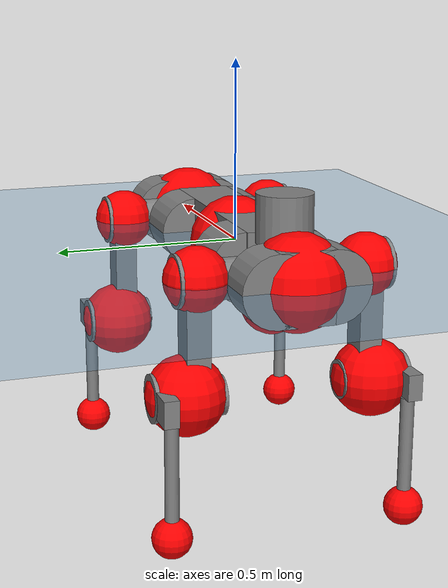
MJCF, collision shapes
<mujoco model="anymal_c">
  <compiler angle="radian" assetdir="assets" balanceinertia="true" inertiafromgeom="false"/>

  <option timestep="0.005" density="1.2" viscosity="2e-05"/>

  <size nkey="1"/>

  <visual>
    <quality shadowsize="8192"/>
    <map shadowclip="0.5"/>
  </visual>

  <default>
    <default class="/">
      <material specular="0" shininess="0.25"/>
      <geom contype="0" conaffinity="0" group="1" solref="-1000 -80"/>
      <site size="0.01 0.005 0.005" group="5"/>
      <general forcelimited="true" forcerange="-80 80" biastype="affine" gainprm="80" biasprm="0 -80 -2"/>
      <default class="anymal_c">
        <joint armature="0.01" damping="0.01" frictionloss="0.1"/>
        <default class="visual">
          <geom type="mesh" group="2"/>
          <default class="visual_zflip"/>
        </default>
        <default class="collision">
          <geom type="cylinder" group="3"/>
          <default class="foot">
            <geom size="0.03 0 0" type="sphere" condim="6" priority="1" friction="0.8 0.02 0.01" solimp="0.015 1 0.03"/>
          </default>
        </default>
      </default>
      <default class="reward_collision_sphere">
        <geom group="5" rgba="1 0 0 1"/>
      </default>
    </default>
  </default>

  <asset>
    <texture type="skybox" colorspace="auto" name="//unnamed_texture_0" builtin="gradient" rgb1="0.95 0.95 0.95" rgb2="0.95 0.95 0.95" width="100" height="600"/>
    <texture type="2d" colorspace="auto" name="texplane" builtin="checker" rgb1="0.345 0.575 0.748" rgb2="0.345 0.575 0.748" markrgb="1 1 1" width="512" height="512"/>
    <texture type="2d" colorspace="linear" name="base" file="base.png"/>
    <texture type="2d" colorspace="linear" name="top_shell" file="top_shell.png"/>
    <texture type="2d" colorspace="linear" name="bottom_shell" file="bottom_shell.png"/>
    <texture type="2d" colorspace="linear" name="remote" file="remote.png"/>
    <texture type="2d" colorspace="linear" name="hatch" file="hatch.png"/>
    <texture type="2d" colorspace="linear" name="handle" file="handle.png"/>
    <texture type="2d" colorspace="linear" name="face" file="face.png"/>
    <texture type="2d" colorspace="linear" name="battery" file="battery.png"/>
    <texture type="2d" colorspace="linear" name="lidar_cage" file="lidar_cage.png"/>
    <texture type="2d" colorspace="linear" name="depth_camera" file="depth_camera.png"/>
    <texture type="2d" colorspace="linear" name="wide_angle_camera" file="wide_angle_camera.png"/>
    <texture type="2d" colorspace="linear" name="lidar" file="lidar.png"/>
    <texture type="2d" colorspace="linear" name="drive" file="drive.png"/>
    <texture type="2d" colorspace="linear" name="hip_l" file="hip_l.png"/>
    <texture type="2d" colorspace="linear" name="shank_l" file="shank_l.png"/>
    <texture type="2d" colorspace="linear" name="foot" file="foot.png"/>
    <texture type="2d" colorspace="linear" name="thigh" file="thigh.png"/>
    <texture type="2d" colorspace="linear" name="shank_r" file="shank_r.png"/>
    <texture type="2d" colorspace="linear" name="hip_r" file="hip_r.png"/>
    <material name="MatPlane" class="/" texture="texplane" texuniform="true" texrepeat="2 2" specular="0.9" shininess="0.5"/>
    <material name="black_plastic" class="/" rgba="0.007 0.007 0.007 1"/>
    <material name="green" class="/" rgba="0.052 0.178 0.033 1"/>
    <material name="red" class="/" rgba="0.178 0.006 0.005 1"/>
    <material name="yellow" class="/" rgba="0.178 0.119 0.006 1"/>
    <material name="lwl" class="/" rgba="0.8 0.8 0.8 1"/>
    <material name="base" class="/" texture="base"/>
    <material name="top_shell" class="/" texture="top_shell"/>
    <material name="bottom_shell" class="/" texture="bottom_shell"/>
    <material name="hip_l" class="/" texture="hip_l"/>
    <material name="thigh" class="/" texture="thigh"/>
    <material name="shank_l" class="/" texture="shank_l"/>
    <material name="foot" class="/" texture="foot"/>
    <material name="hip_r" class="/" texture="hip_r"/>
    <material name="shank" class="/" texture="shank_r"/>
    <material name="hatch" class="/" texture="hatch"/>
    <material name="remote" class="/" texture="remote"/>
    <material name="handle" class="/" texture="handle"/>
    <material name="face" class="/" texture="face"/>
    <material name="depth_camera" class="/" texture="depth_camera"/>
    <material name="wide_angle_camera" class="/" texture="wide_angle_camera"/>
    <material name="battery" class="/" texture="battery"/>
    <material name="lidar_cage" class="/" texture="lidar_cage"/>
    <material name="lidar" class="/" texture="lidar"/>
    <material name="drive" class="/" texture="drive"/>
    <mesh name="base_0" class="/" file="base_0.obj"/>
    <mesh name="base_1" class="/" file="base_1.obj"/>
    <mesh name="base_2" class="/" file="base_2.obj"/>
    <mesh name="base_3" class="/" file="base_3.obj"/>
    <mesh name="base_4" class="/" file="base_4.obj"/>
    <mesh name="base_5" class="/" file="base_5.obj"/>
    <mesh name="top_shell" class="/" file="top_shell.obj"/>
    <mesh name="bottom_shell" class="/" file="bottom_shell.obj"/>
    <mesh name="remote" class="/" file="remote.obj"/>
    <mesh name="handle" class="/" file="handle.obj"/>
    <mesh name="face" class="/" file="face.obj"/>
    <mesh name="wide_angle_camera" class="/" file="wide_angle_camera.obj"/>
    <mesh name="depth_camera" class="/" file="depth_camera.obj"/>
    <mesh name="battery" class="/" file="battery.obj"/>
    <mesh name="lidar_cage" class="/" file="lidar_cage.obj"/>
    <mesh name="lidar" class="/" file="lidar.obj"/>
    <mesh name="drive" class="/" file="drive.obj"/>
    <mesh name="hip_l" class="/" file="hip_l.obj"/>
    <mesh name="thigh" class="/" file="thigh.obj"/>
    <mesh name="shank_l" class="/" file="shank_l.obj"/>
    <mesh name="foot" class="/" file="foot.obj"/>
    <mesh name="hip_r" class="/" file="hip_r.obj"/>
    <mesh name="hatch" class="/" file="hatch.obj"/>
    <mesh name="shank_r" class="/" file="shank_r.obj"/>
  </asset>

  <worldbody>
    <geom name="floor" class="/" size="100 100 0.125" type="plane" group="0" material="MatPlane"/>
    <light name="toplight_shadow" class="/" pos="0 0 5" dir="0.0990148 0.0990148 -0.990148" type="directional" ambient="0.04 0.04 0.04" diffuse="0.55 0.55 0.55" specular="0.12 0.12 0.12"/>
    <light name="toplight_fill" class="/" pos="0 0 5" dir="0.0990148 0.0990148 -0.990148" type="directional" castshadow="false" ambient="0.04 0.04 0.04" diffuse="0.3 0.3 0.3" specular="0.08 0.08 0.08"/>
    <body name="trunk" childclass="anymal_c" pos="-0.0051376 0.000731636 -0.0018457" quat="1 0.000670766 -6.31116e-05 -0.00070335">
      <inertial pos="0.00265994 -0.00303429 0.0535841" quat="0.497855 0.501755 0.501637 0.49874" mass="23.0082" diaginertia="0.632382 0.776135 0.315269"/>
      <joint name="//unnamed_joint_0" type="free" armature="0" damping="0" frictionloss="0"/>
      <geom name="//unnamed_geom_1" class="visual" material="green" mesh="base_0"/>
      <geom name="//unnamed_geom_2" class="visual" material="yellow" mesh="base_1"/>
      <geom name="//unnamed_geom_3" class="visual" material="red" mesh="base_2"/>
      <geom name="//unnamed_geom_4" class="visual" material="black_plastic" mesh="base_3"/>
      <geom name="//unnamed_geom_5" class="visual" material="lwl" mesh="base_4"/>
      <geom name="//unnamed_geom_6" class="visual" material="base" mesh="base_5"/>
      <geom name="trunk_1" class="collision" size="0.305752 0.0738023 0.0948886" type="box"/>
      <geom name="trunk_2" class="collision" size="0.0948886 0.0764381" pos="0.222317 0.0742366 0" quat="0.707107 0 0.707107 0"/>
      <geom name="trunk_3" class="collision" size="0.0948886 0.0764381" pos="-0.222317 0.0742366 0" quat="0.707107 0 0.707107 0"/>
      <geom name="trunk_4" class="collision" size="0.0948886 0.0764381" pos="0.222317 -0.0742366 0" quat="0.707107 0 0.707107 0"/>
      <geom name="trunk_5" class="collision" size="0.0948886 0.0764381" pos="-0.222317 -0.0742366 0" quat="0.707107 0 0.707107 0"/>
      <geom name="//unnamed_geom_12" class="visual" material="top_shell" mesh="top_shell"/>
      <geom name="//unnamed_geom_13" class="visual" material="bottom_shell" mesh="bottom_shell"/>
      <geom name="//unnamed_geom_14" class="visual" material="remote" mesh="remote"/>
      <geom name="//unnamed_geom_15" class="visual" material="handle" mesh="handle"/>
      <geom name="//unnamed_geom_16" class="visual" pos="0.42368 0 0" quat="1 0 0 0" material="face" mesh="face"/>
      <geom name="trunk_6" class="collision" size="0.0579875 0.0738023 0.0948886" pos="0.479899 0 0" type="box"/>
      <geom name="//unnamed_geom_18" class="collision" size="0.0948886 0.0579875" pos="0.479899 0.0742366 0" quat="0.707107 0 0.707107 0"/>
      <geom name="//unnamed_geom_19" class="collision" size="0.0948886 0.0579875" pos="0.479899 -0.0742366 0" quat="0.707107 0 0.707107 0"/>
      <geom name="//unnamed_geom_20" class="visual" pos="0.471877 0 -0.0319861" quat="0.965926 0 0.258819 0" material="depth_camera" mesh="depth_camera"/>
      <geom name="//unnamed_geom_21" class="visual" pos="0.524362 0 0.0161718" material="wide_angle_camera" mesh="wide_angle_camera"/>
      <geom name="//unnamed_geom_22" class="visual_zflip" pos="-0.42368 0 0" quat="0 0 0 1" material="face" mesh="face"/>
      <geom name="trunk_7" class="collision" size="0.0579875 0.0738023 0.0948886" pos="-0.479899 0 0" quat="0 0 0 1" type="box"/>
      <geom name="//unnamed_geom_24" class="collision" size="0.0948886 0.0579875" pos="-0.479899 -0.0742366 0" quat="0 -0.707107 0 0.707107"/>
      <geom name="//unnamed_geom_25" class="collision" size="0.0948886 0.0579875" pos="-0.479899 0.0742366 0" quat="0 -0.707107 0 0.707107"/>
      <geom name="//unnamed_geom_26" class="visual" pos="-0.471877 0 -0.0319861" quat="0 -0.258819 0 0.965926" material="depth_camera" mesh="depth_camera"/>
      <geom name="//unnamed_geom_27" class="visual_zflip" pos="-0.524362 0 0.0161718" quat="0 0 0 1" material="wide_angle_camera" mesh="wide_angle_camera"/>
      <geom name="//unnamed_geom_28" class="visual" material="battery" mesh="battery"/>
      <geom name="//unnamed_geom_29" class="visual" pos="0 0.0815936 0.0309404" quat="0.683013 -0.183013 0.183013 0.683013" material="depth_camera" mesh="depth_camera"/>
      <geom name="//unnamed_geom_30" class="visual" pos="0 -0.0815936 0.0309404" quat="0.683013 0.183013 0.183013 -0.683013" material="depth_camera" mesh="depth_camera"/>
      <geom name="//unnamed_geom_31" class="visual" pos="-0.372062 0 0.0794008" quat="1 0 0 0" material="lidar_cage" mesh="lidar_cage"/>
      <geom name="trunk_8" class="collision" size="0.0738023 0.0632591" pos="-0.372062 0 0.144218"/>
      <geom name="//unnamed_geom_33" class="visual" pos="-0.372062 1.50765e-05 0.153616" quat="0.707107 0 0 -0.707107" material="lidar" mesh="lidar"/>
      <geom name="//unnamed_geom_34" class="visual" pos="0.306542 0.110301 -3.40854e-10" quat="0.258819 0.965926 0 0" material="drive" mesh="drive"/>
      <geom name="//unnamed_geom_35" class="visual" pos="0.306542 -0.110301 3.40854e-10" quat="0.258819 -0.965926 0 0" material="drive" mesh="drive"/>
      <geom name="//unnamed_geom_36" class="visual" pos="-0.306542 0.110301 3.40854e-10" quat="0 0 0.965926 -0.258819" material="drive" mesh="drive"/>
      <geom name="//unnamed_geom_37" class="visual" pos="-0.306542 -0.110301 -3.40854e-10" quat="0 0 -0.965926 -0.258819" material="drive" mesh="drive"/>
      <geom name="//unnamed_geom_38" class="visual" pos="0.118569 0 0.0788606" quat="1 0 0 0" material="hatch" mesh="hatch"/>
      <geom name="//unnamed_geom_39" class="reward_collision_sphere" size="0.126518"/>
      <geom name="//unnamed_geom_40" class="reward_collision_sphere" size="0.126518" pos="0.459967 0 0"/>
      <geom name="//unnamed_geom_41" class="reward_collision_sphere" size="0.126518" pos="-0.459967 0 0"/>
      <site name="imu" pos="0.262977 -0.00241088 0.0828764" size="0.0105432"/>
      <camera name="track" pos="0 -2.12105 0" quat="0.707107 0.707107 0 0" mode="trackcom"/>
      <camera name="ego_camera" pos="0.459967 0 -0.0432113" quat="-0.5 -0.5 0.5 0.5"/>
      <body name="LF_HIP" pos="0.309837 0.111891 0.000673545" quat="0.258006 0.966141 -0.00152796 0.0013351">
        <inertial pos="0.0639457 -0.0167027 -0.00871577" quat="-0.127101 0.708932 -0.134066 0.680652" mass="3.12449" diaginertia="0.00626303 0.00671893 0.00463471"/>
        <joint name="LF_HAA" pos="0 0 0" axis="0.999226 0.0368163 -0.0138379" stiffness="0.0256099" range="-0.759173 0.486518" armature="0.0138907" damping="0.0225773" frictionloss="0.1042"/>
        <geom name="//unnamed_geom_42" class="visual" pos="0 -2.00509e-05 3.29334e-06" quat="0.258819 -0.965926 0 0" material="hip_l" mesh="hip_l"/>
        <geom name="//unnamed_geom_43" class="visual" pos="0.0612267 -0.0747014 -0.043275" quat="0.183013 -0.683013 0.683013 0.183013" material="drive" mesh="drive"/>
        <geom name="//unnamed_geom_44" class="collision" size="0.0527159 0.0738023" pos="0.0612267 -0.0126836 -0.00745935" quat="-0.353553 -0.612372 0.612372 -0.353553"/>
        <body name="LF_THIGH" pos="0.0630436 -0.0781904 -0.0438227" quat="0.183056 -0.683002 0.682998 0.183063">
          <inertial pos="0.0304056 0.000153476 -0.258338" quat="0.99315 -0.00524701 -0.0808399 0.084207" mass="3.60954" diaginertia="0.0336357 0.039406 0.00599499"/>
          <joint name="LF_HFE" pos="0 0 0" axis="0.999999 -0.00149176 -0.000803424" stiffness="0.00808233" range="-3.13377 3.13176" armature="0.00817971" damping="0.0128973" frictionloss="0.111309"/>
          <geom name="//unnamed_geom_45" class="visual" pos="-0.000763511 -1.20311e-06 0" quat="0.707107 0 0 -0.707107" material="thigh" mesh="thigh"/>
          <geom name="//unnamed_geom_46" class="collision" size="0.0685307 0.0421727" pos="0.0408859 0 0" quat="0.5 0.5 -0.5 -0.5"/>
          <geom name="//unnamed_geom_47" class="collision" size="0.0395369 0.0316295 0.14899" pos="0.0306644 0 -0.152659" quat="0.707107 0 0 -0.707107" type="box"/>
          <geom name="//unnamed_geom_48" class="visual" pos="0.102521 0 -0.307881" quat="1 0 0 0" material="drive" mesh="drive"/>
          <geom name="//unnamed_geom_49" class="collision" size="0.0527159 0.0738023" pos="0.0309711 0 -0.307881" quat="0.707107 0 0.707107 0"/>
          <geom name="//unnamed_geom_50" class="reward_collision_sphere" size="0.0843455" pos="0.0255537 0 0"/>
          <body name="LF_SHANK" pos="0.104221 0.00733215 -0.310056" quat="0.999999 -0.000206146 0.000899157 -0.000994393">
            <inertial pos="0.00547474 -0.0669159 -0.0865107" quat="0.990967 -0.133339 -0.0135163 -0.0047198" mass="0.665139" diaginertia="0.0115856 0.0121012 0.00170491"/>
            <joint name="LF_KFE" pos="0 0 0" axis="0.999972 0.00573886 -0.00484519" range="-3.14162 3.09322" armature="0.0103108" damping="0.0211032" frictionloss="0.116324"/>
            <geom name="//unnamed_geom_51" class="visual" pos="-0.000248964 -0.00132749 0" quat="0.707107 0 0 -0.707107" material="shank_l" mesh="shank_l"/>
            <geom name="LF_kfe_act" class="collision" size="0.0632591 0.0210864" pos="0.020443 0 0" quat="0.5 0.5 -0.5 -0.5"/>
            <geom name="//unnamed_geom_53" class="collision" size="0.0606222 0.0355832 0.020032" pos="0.020443 -0.060979 0" quat="0.5 0.5 -0.5 -0.5" type="box"/>
            <geom name="//unnamed_geom_54" class="visual" pos="0.0133391 -0.0937008 -0.365103" quat="0.382683 0 0 -0.92388" material="foot" mesh="foot"/>
            <geom name="LF_calf" class="collision" size="0.0184506 0.148925" pos="0.013339 -0.093273 -0.182552" quat="0.707107 0 0 -0.707107"/>
            <geom name="LF_foot" class="foot" size="0.0290911" pos="0.013339 -0.093273 -0.340797" quat="0.707107 0 0 -0.707107"/>
            <geom name="//unnamed_geom_57" class="reward_collision_sphere" size="0.105432" pos="-0.0511074 0 0"/>
            <geom name="//unnamed_geom_58" class="reward_collision_sphere" size="0.0527159" pos="0.013339 -0.093273 -0.340797"/>
            <site name="LF_foot" class="foot" pos="0.013339 -0.093273 -0.340797" quat="0.707107 0 0 -0.707107" size="0.0105432"/>
          </body>
        </body>
      </body>
      <body name="RF_HIP" pos="0.313735 -0.117326 0.00389922" quat="0.259222 -0.965817 0.000482256 -0.00133119">
        <inertial pos="0.0511961 0.0182566 -0.00331079" quat="0.136072 0.674852 0.133637 0.712882" mass="3.08627" diaginertia="0.0058966 0.00623391 0.00446013"/>
        <joint name="RF_HAA" pos="0 0 0" axis="0.999704 0.0242483 -0.00202021" range="-0.373378 0.766915" armature="0.0103046" damping="0.0217" frictionloss="0.127798"/>
        <geom name="//unnamed_geom_59" class="visual" pos="0 2.00507e-05 3.29333e-06" quat="0.258819 0.965926 0 0" material="hip_r" mesh="hip_r"/>
        <geom name="//unnamed_geom_60" class="visual" pos="0.0612267 0.0747014 -0.043275" quat="0.183013 0.683013 0.683013 -0.183013" material="drive" mesh="drive"/>
        <geom name="//unnamed_geom_61" class="collision" size="0.0527159 0.0738023" pos="0.0612267 0.0126836 -0.00745935" quat="-0.353553 0.612372 0.612372 0.353553"/>
        <body name="RF_THIGH" pos="0.0620657 0.0761127 -0.0466496" quat="0.182856 0.68346 0.68261 -0.183002">
          <inertial pos="0.0319982 -0.00791004 -0.263629" quat="0.992767 -0.00718201 -0.0825584 0.086869" mass="3.66167" diaginertia="0.0334506 0.0418882 0.00622746"/>
          <joint name="RF_HFE" pos="0 0 0" axis="0.999953 -0.00826066 -0.00511144" stiffness="0.00194007" range="-3.18834 3.13277" armature="0.0095812" damping="0.0238121" frictionloss="0.116928"/>
          <geom name="//unnamed_geom_62" class="visual" pos="-0.000763511 -1.20311e-06 0" quat="0.707107 0 0 -0.707107" material="thigh" mesh="thigh"/>
          <geom name="//unnamed_geom_63" class="collision" size="0.0685307 0.0421727" pos="0.0408859 0 0" quat="0.5 0.5 0.5 0.5"/>
          <geom name="//unnamed_geom_64" class="collision" size="0.0395369 0.0316295 0.14899" pos="0.0306644 0 -0.152659" quat="0.707107 0 0 0.707107" type="box"/>
          <geom name="//unnamed_geom_65" class="visual" pos="0.102521 0 -0.307881" quat="1 0 0 0" material="drive" mesh="drive"/>
          <geom name="//unnamed_geom_66" class="collision" size="0.0527159 0.0738023" pos="0.0309711 0 -0.307881" quat="0.707107 0 0.707107 0"/>
          <geom name="//unnamed_geom_67" class="reward_collision_sphere" size="0.0843455" pos="0.0255537 0 0"/>
          <body name="RF_SHANK" pos="0.0996425 0.00188324 -0.312344" quat="0.999994 0.00218976 -0.00131627 -0.00235632">
            <inertial pos="-0.00247397 0.066919 -0.0913363" quat="0.99196 0.122705 -0.00869736 0.0297185" mass="0.705995" diaginertia="0.0109555 0.0113522 0.00146118"/>
            <joint name="RF_KFE" pos="0 0 0" axis="0.999981 0.00423761 0.00453348" range="-3.01771 3.10077" armature="0.0118496" damping="0" frictionloss="0.0795022"/>
            <geom name="//unnamed_geom_68" class="visual" pos="-0.000248963 0.00132749 0" quat="0.707107 0 0 0.707107" material="shank" mesh="shank_r"/>
            <geom name="RF_kfe_act" class="collision" size="0.0632591 0.0210864" pos="0.020443 0 0" quat="0.5 0.5 0.5 0.5"/>
            <geom name="//unnamed_geom_70" class="collision" size="0.0606222 0.0355832 0.020032" pos="0.020443 0.060979 0" quat="0.5 0.5 0.5 0.5" type="box"/>
            <geom name="//unnamed_geom_71" class="visual" pos="0.013339 0.0937008 -0.365103" quat="0.382683 0 0 0.92388" material="foot" mesh="foot"/>
            <geom name="RF_calf" class="collision" size="0.0184506 0.148925" pos="0.013339 0.093273 -0.182552" quat="0.707107 0 0 0.707107"/>
            <geom name="RF_foot" class="foot" size="0.0296242" pos="0.013339 0.093273 -0.340797" quat="0.707107 0 0 0.707107"/>
            <geom name="//unnamed_geom_74" class="reward_collision_sphere" size="0.105432" pos="-0.0511074 0 0"/>
            <geom name="//unnamed_geom_75" class="reward_collision_sphere" size="0.0527159" pos="0.013339 0.093273 -0.340797"/>
            <site name="RF_foot" class="foot" pos="0.013339 0.093273 -0.340797" quat="0.707107 0 0 0.707107" size="0.0105432"/>
          </body>
        </body>
      </body>
      <body name="LH_HIP" pos="-0.314752 0.115226 0.000819245" quat="0.000423231 1.96957e-06 0.965847 -0.259114">
        <inertial pos="0.0517917 0.0239436 -0.00967268" quat="0.122774 0.668549 0.117832 0.723937" mass="3.28473" diaginertia="0.00642608 0.00658082 0.00514307"/>
        <joint name="LH_HAA" pos="0 0 0" axis="0.999999 -0.00130822 0.000143896" range="-0.539481 0.736842" armature="0.0105279" damping="0.00611708" frictionloss="0.0994217"/>
        <geom name="//unnamed_geom_76" class="visual" pos="0 2.00507e-05 3.29333e-06" quat="-0.258819 -0.965926 0 0" material="hip_r" mesh="hip_r"/>
        <geom name="//unnamed_geom_77" class="visual" pos="0.0612267 0.0747014 -0.043275" quat="0.183013 0.683013 0.683013 -0.183013" material="drive" mesh="drive"/>
        <geom name="//unnamed_geom_78" class="collision" size="0.0527159 0.0738023" pos="0.0612267 0.0126836 -0.00745935" quat="-0.353553 0.612372 0.612372 0.353553"/>
        <body name="LH_THIGH" pos="0.0600426 0.0773913 -0.0484775" quat="0.182814 0.683008 0.682928 -0.183544">
          <inertial pos="0.0336265 -0.00652669 -0.263463" quat="0.993633 -0.00903954 -0.0854073 0.0729214" mass="3.56519" diaginertia="0.0334945 0.039534 0.0064946"/>
          <joint name="LH_HFE" pos="0 0 0" axis="0.999613 -0.0152058 -0.0232882" stiffness="0.0138621" range="-3.18878 3.10486" armature="0.00746182" damping="0.014278" frictionloss="0.0826166"/>
          <geom name="//unnamed_geom_79" class="visual" pos="-0.000763511 -1.20311e-06 0" quat="0.707107 0 0 -0.707107" material="thigh" mesh="thigh"/>
          <geom name="//unnamed_geom_80" class="collision" size="0.0685307 0.0421727" pos="0.0408859 0 0" quat="0.5 0.5 -0.5 -0.5"/>
          <geom name="//unnamed_geom_81" class="collision" size="0.0395369 0.0316295 0.14899" pos="0.0306644 0 -0.152659" quat="0.707107 0 0 -0.707107" type="box"/>
          <geom name="//unnamed_geom_82" class="visual" pos="0.102521 0 -0.307881" quat="1 0 0 0" material="drive" mesh="drive"/>
          <geom name="//unnamed_geom_83" class="collision" size="0.0527159 0.0738023" pos="0.0309711 0 -0.307881" quat="0.707107 0 0.707107 0"/>
          <geom name="//unnamed_geom_84" class="reward_collision_sphere" size="0.0843455" pos="0.0255537 0 0"/>
          <body name="LH_SHANK" pos="0.104247 -0.00432364 -0.300469" quat="0.999993 -0.00281558 -0.00237289 -2.7167e-05">
            <inertial pos="0.00773014 0.0647599 -0.0952975" quat="0.992781 0.117716 -0.0033567 0.0227654" mass="0.734787" diaginertia="0.0111789 0.012335 0.00165974"/>
            <joint name="LH_KFE" pos="0 0 0" axis="0.999995 0.00300278 0.000319608" range="-3.10604 3.17569" armature="0.0115397" damping="0.00995456" frictionloss="0.123917"/>
            <geom name="//unnamed_geom_85" class="visual" pos="-0.000248963 0.00132749 0" quat="-0.707107 0 0 -0.707107" material="shank" mesh="shank_r"/>
            <geom name="LH_kfe_act" class="collision" size="0.0632591 0.0210864" pos="0.020443 0 0" quat="0.5 0.5 -0.5 -0.5"/>
            <geom name="//unnamed_geom_87" class="collision" size="0.0606222 0.0355832 0.020032" pos="0.020443 0.060979 0" quat="0.5 0.5 -0.5 -0.5" type="box"/>
            <geom name="//unnamed_geom_88" class="visual" pos="0.013339 0.0937008 -0.365103" quat="-0.382683 0 0 -0.92388" material="foot" mesh="foot"/>
            <geom name="LH_calf" class="collision" size="0.0184506 0.148925" pos="0.013339 0.093273 -0.182552" quat="0.707107 0 0 -0.707107"/>
            <geom name="LH_foot" class="foot" size="0.0362608" pos="0.013339 0.093273 -0.340797" quat="0.707107 0 0 -0.707107"/>
            <geom name="//unnamed_geom_91" class="reward_collision_sphere" size="0.105432" pos="-0.0511074 0 0"/>
            <geom name="//unnamed_geom_92" class="reward_collision_sphere" size="0.0527159" pos="0.013339 0.093273 -0.340797"/>
            <site name="LH_foot" class="foot" pos="0.013339 0.093273 -0.340797" quat="0.707107 0 0 -0.707107" size="0.0105432"/>
          </body>
        </body>
      </body>
      <body name="RH_HIP" pos="-0.300227 -0.109468 -0.00130047" quat="0.000365415 0.000108094 -0.965915 -0.25886">
        <inertial pos="0.0550621 -0.0169112 -0.00994508" quat="-0.102244 0.699209 -0.132688 0.695016" mass="3.1701" diaginertia="0.00626294 0.00625538 0.00460936"/>
        <joint name="RH_HAA" pos="0 0 0" axis="0.999422 0.0338439 0.00324437" range="-0.736753 0.518178" armature="0.0101245" damping="0.00801975" frictionloss="0.109076"/>
        <geom name="//unnamed_geom_93" class="visual" pos="0 -2.00509e-05 3.29334e-06" quat="-0.258819 0.965926 0 0" material="hip_l" mesh="hip_l"/>
        <geom name="//unnamed_geom_94" class="visual" pos="0.0612267 -0.0747014 -0.043275" quat="-0.183013 0.683013 -0.683013 -0.183013" material="drive" mesh="drive"/>
        <geom name="//unnamed_geom_95" class="collision" size="0.0527159 0.0738023" pos="0.0612267 -0.0126836 -0.00745935" quat="0.353553 0.612372 -0.612372 0.353553"/>
        <body name="RH_THIGH" pos="0.0638549 -0.0780765 -0.0505254" quat="-0.18293 0.683394 -0.682751 -0.182648">
          <inertial pos="0.0335565 -0.00214264 -0.263839" quat="0.990889 0.0288779 -0.086598 0.0990293" mass="3.51767" diaginertia="0.0332472 0.0380936 0.00557637"/>
          <joint name="RH_HFE" pos="0 0 0" axis="0.999945 -0.00720084 0.00765579" stiffness="0.0140747" range="-3.13362 3.16342" armature="0.00849325" damping="0.0324511" frictionloss="0.107254"/>
          <geom name="//unnamed_geom_96" class="visual" pos="-0.000763511 -1.20311e-06 0" quat="0.707107 0 0 -0.707107" material="thigh" mesh="thigh"/>
          <geom name="//unnamed_geom_97" class="collision" size="0.0685307 0.0421727" pos="0.0408859 0 0" quat="0.5 0.5 0.5 0.5"/>
          <geom name="//unnamed_geom_98" class="collision" size="0.0395369 0.0316295 0.14899" pos="0.0306644 0 -0.152659" quat="0.707107 0 0 0.707107" type="box"/>
          <geom name="//unnamed_geom_99" class="visual" pos="0.102521 0 -0.307881" quat="1 0 0 0" material="drive" mesh="drive"/>
          <geom name="//unnamed_geom_100" class="collision" size="0.0527159 0.0738023" pos="0.0309711 0 -0.307881" quat="0.707107 0 0.707107 0"/>
          <geom name="//unnamed_geom_101" class="reward_collision_sphere" size="0.0843455" pos="0.0255537 0 0"/>
          <body name="RH_SHANK" pos="0.102275 -0.00111071 -0.309192" quat="1 0.000351704 0.000219444 -9.7419e-06">
            <inertial pos="0.0105777 -0.0579869 -0.0932875" quat="0.993757 -0.10808 -0.0032841 -0.0274729" mass="0.635091" diaginertia="0.0113411 0.0113698 0.00158899"/>
            <joint name="RH_KFE" pos="0 0 0" axis="1 0.000558116 0.000509459" range="-3.15312 3.01594" armature="0.0103068" damping="0.0147374" frictionloss="0.0716309"/>
            <geom name="//unnamed_geom_102" class="visual" pos="-0.000248964 -0.00132749 0" quat="0.707107 0 0 -0.707107" material="shank_l" mesh="shank_l"/>
            <geom name="RH_kfe_act" class="collision" size="0.0632591 0.0210864" pos="0.020443 0 0" quat="0.5 0.5 0.5 0.5"/>
            <geom name="//unnamed_geom_104" class="collision" size="0.0606222 0.0355832 0.020032" pos="0.020443 -0.060979 0" quat="0.5 0.5 0.5 0.5" type="box"/>
            <geom name="//unnamed_geom_105" class="visual" pos="0.0133391 -0.0937008 -0.365103" quat="0.382683 0 0 -0.92388" material="foot" mesh="foot"/>
            <geom name="RH_calf" class="collision" size="0.0184506 0.148925" pos="0.013339 -0.093273 -0.182552" quat="0.707107 0 0 0.707107"/>
            <geom name="RH_foot" class="foot" size="0.0244796" pos="0.013339 -0.093273 -0.340797" quat="0.707107 0 0 0.707107"/>
            <geom name="//unnamed_geom_108" class="reward_collision_sphere" size="0.105432" pos="-0.0511074 0 0"/>
            <geom name="//unnamed_geom_109" class="reward_collision_sphere" size="0.0527159" pos="0.013339 -0.093273 -0.340797"/>
            <site name="RH_foot" class="foot" pos="0.013339 -0.093273 -0.340797" quat="0.707107 0 0 0.707107" size="0.0105432"/>
          </body>
        </body>
      </body>
    </body>
  </worldbody>

  <contact>
    <pair class="/" geom1="floor" geom2="LF_foot" name="//unnamed_contact_0"/>
    <pair class="/" geom1="floor" geom2="RF_foot" name="//unnamed_contact_1"/>
    <pair class="/" geom1="floor" geom2="LH_foot" name="//unnamed_contact_2"/>
    <pair class="/" geom1="floor" geom2="RH_foot" name="//unnamed_contact_3"/>
  </contact>

  <actuator>
    <general name="LF_HAA" class="/" joint="LF_HAA" forcerange="-82.9941 82.9941" gainprm="85.1139" biasprm="0 -85.1139 -2.20986"/>
    <general name="LF_HFE" class="/" joint="LF_HFE" forcerange="-97.8949 97.8949" gainprm="85.1139" biasprm="0 -85.1139 -2.20986"/>
    <general name="LF_KFE" class="/" joint="LF_KFE" forcerange="-85.571 85.571" gainprm="85.1139" biasprm="0 -85.1139 -2.20986"/>
    <general name="RF_HAA" class="/" joint="RF_HAA" forcerange="-83.3328 83.3328" gainprm="85.1139" biasprm="0 -85.1139 -2.20986"/>
    <general name="RF_HFE" class="/" joint="RF_HFE" forcerange="-94.5267 94.5267" gainprm="85.1139" biasprm="0 -85.1139 -2.20986"/>
    <general name="RF_KFE" class="/" joint="RF_KFE" forcerange="-80.2437 80.2437" gainprm="85.1139" biasprm="0 -85.1139 -2.20986"/>
    <general name="LH_HAA" class="/" joint="LH_HAA" forcerange="-82.9058 82.9058" gainprm="85.1139" biasprm="0 -85.1139 -2.20986"/>
    <general name="LH_HFE" class="/" joint="LH_HFE" forcerange="-79.2744 79.2744" gainprm="85.1139" biasprm="0 -85.1139 -2.20986"/>
    <general name="LH_KFE" class="/" joint="LH_KFE" forcerange="-87.6176 87.6176" gainprm="85.1139" biasprm="0 -85.1139 -2.20986"/>
    <general name="RH_HAA" class="/" joint="RH_HAA" forcerange="-81.2689 81.2689" gainprm="85.1139" biasprm="0 -85.1139 -2.20986"/>
    <general name="RH_HFE" class="/" joint="RH_HFE" forcerange="-89.7329 89.7329" gainprm="85.1139" biasprm="0 -85.1139 -2.20986"/>
    <general name="RH_KFE" class="/" joint="RH_KFE" forcerange="-107.783 107.783" gainprm="85.1139" biasprm="0 -85.1139 -2.20986"/>
  </actuator>

  <sensor>
    <gyro site="imu" name="imu_angular_velocity"/>
    <velocimeter site="imu" name="imu_linear_velocity"/>
    <framelinvel objtype="site" objname="LF_foot" name="LF_foot_global_linear_velocity"/>
    <framelinvel objtype="site" objname="RF_foot" name="RF_foot_global_linear_velocity"/>
    <framelinvel objtype="site" objname="LH_foot" name="LH_foot_global_linear_velocity"/>
    <framelinvel objtype="site" objname="RH_foot" name="RH_foot_global_linear_velocity"/>
  </sensor>

  <keyframe>
    <key name="home" qpos="0 0 0.55 1 0 0 0 0 0.4 -0.8 0 -0.4 0.8 0 -0.4 0.8 0 0.4 -0.8"/>
  </keyframe>
</mujoco>
